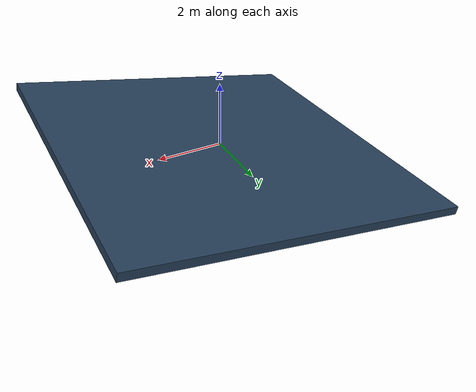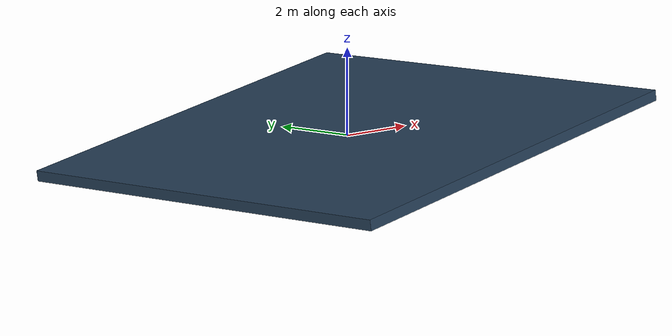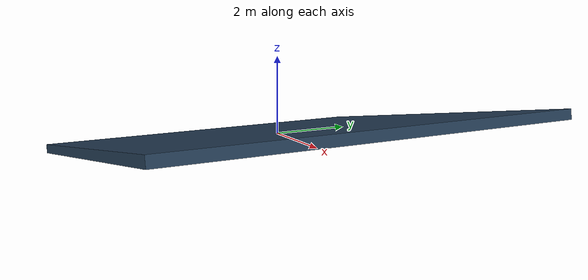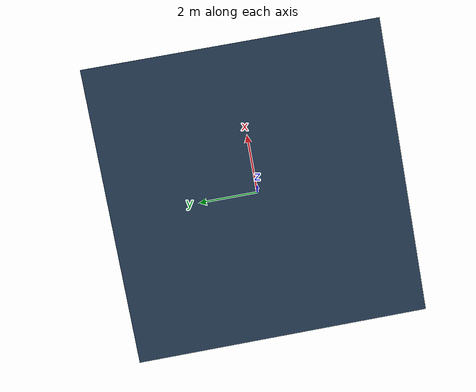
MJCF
<mujoco model="slope">
  <statistic center="0 0 0.55" extent="1.1"/>

  <visual>
    <headlight diffuse="0.6 0.6 0.6" ambient="0.3 0.3 0.3" specular="0 0 0"/>
    <rgba haze="0.15 0.25 0.35 1"/>
    <global azimuth="150" elevation="-20"/>
  </visual>
  <visual>
    <rgba com="0.502 1.0 0 0.5" contactforce="0.98 0.4 0.4 1" contactpoint="1.0 1.0 0.6 0.4"/>
    <scale com="1" forcewidth="0.03" contactwidth="0.01" contactheight="0.02" framewidth="0.05" framelength="0.6"/>
    <map force="0.005"/>
  </visual>
  <asset>
    <texture name="skybox" type="skybox" builtin="gradient" rgb1="0.2 0.3 0.4" rgb2="0 0 0" width="1000" height="1000" mark="random" random="0.001" markrgb="1 1 1"/>
    <texture type="2d" name="groundplane" builtin="checker" mark="edge" rgb1="0.2 0.3 0.4" rgb2="0.1 0.2 0.3" markrgb="0.8 0.8 0.8" width="1000" height="1000"/>
    <material name="groundplane" texture="groundplane" texuniform="true" texrepeat="5 5" reflectance="0.2"/>
  </asset>

  <worldbody>
    <light pos="0 0 10" dir="0 0 -1" directional="true"/>
    <!-- 绕Y轴旋转θ度 quat=(cos(θ/2),0,sin(θ/2),0) -->
    <geom name="slope" size="5 5 0.125" type="box" material="groundplane" conaffinity="7" condim="3" friction="1" pos="0 0 0" quat="0.9962 0 -0.0872 0"/>
  </worldbody>
</mujoco>
